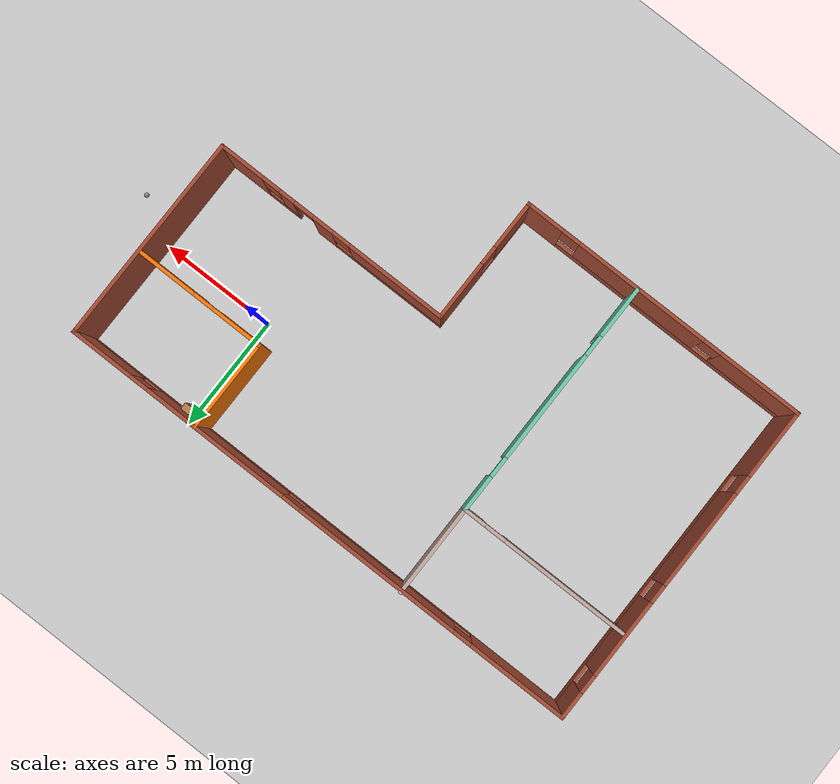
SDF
<sdf version="1.6">
 <world name="default">
  <model name="ground_plane">
   <static>1</static>
   <link name="link">
    <collision name="collision">
     <geometry><plane><normal>0 0 1</normal><size>100 100</size></plane></geometry>
     <surface>
      <contact><collide_bitmask>65535</collide_bitmask></contact>
      <friction><ode><mu>100</mu><mu2>50</mu2></ode></friction>
     </surface>
    </collision>
    <visual name="visual">
     <cast_shadows>0</cast_shadows>
     <geometry><plane><normal>0 0 1</normal><size>100 100</size></plane></geometry>
     <material>
      <script><uri>file://media/materials/scripts/gazebo.material</uri><name>Gazebo/Grey</name></script>
     </material>
    </visual>
   </link>
  </model>
  <model name="building_1">
   <pose>-6.503 -2.38802 0 0 -0 0</pose>
   <link name="Wall_1">
    <pose>1e-06 7.07117 0 0 -0 1.3e-05</pose>
    <visual name="Wall_1_Visual_0">
     <pose>-9.40288 0 1.25 0 -0 0</pose>
     <geometry><box><size>4.33824 0.15 2.5</size></box></geometry>
     <material>
      <script><uri>file://media/materials/scripts/gazebo.material</uri><name>Gazebo/Bricks</name></script>
      <ambient>1 1 1 1</ambient>
     </material>
     <meta><layer>0</layer></meta>
    </visual>
    <collision name="Wall_1_Collision_0">
     <geometry><box><size>4.33824 0.15 2.5</size></box></geometry>
     <pose>-9.40288 0 1.25 0 -0 0</pose>
    </collision>
    <visual name="Wall_1_Visual_1">
     <pose>2.16912 0 0.25 0 -0 0</pose>
     <geometry><box><size>18.8058 0.15 0.5</size></box></geometry>
     <material>
      <script><uri>file://media/materials/scripts/gazebo.material</uri><name>Gazebo/Bricks</name></script>
      <ambient>1 1 1 1</ambient>
     </material>
     <meta><layer>0</layer></meta>
    </visual>
    <collision name="Wall_1_Collision_1">
     <geometry><box><size>18.8058 0.15 0.5</size></box></geometry>
     <pose>2.16912 0 0.25 0 -0 0</pose>
    </collision>
    <visual name="Wall_1_Visual_2">
     <pose>-2.80368 0 1.5 0 -0 0</pose>
     <geometry><box><size>7.26015 0.15 2</size></box></geometry>
     <material>
      <script><uri>file://media/materials/scripts/gazebo.material</uri><name>Gazebo/Bricks</name></script>
      <ambient>1 1 1 1</ambient>
     </material>
     <meta><layer>0</layer></meta>
    </visual>
    <collision name="Wall_1_Collision_2">
     <geometry><box><size>7.26015 0.15 2</size></box></geometry>
     <pose>-2.80368 0 1.5 0 -0 0</pose>
    </collision>
    <visual name="Wall_1_Visual_3">
     <pose>4.82578 0 1.5 0 -0 0</pose>
     <geometry><box><size>6.39876 0.15 2</size></box></geometry>
     <material>
      <script><uri>file://media/materials/scripts/gazebo.material</uri><name>Gazebo/Bricks</name></script>
      <ambient>1 1 1 1</ambient>
     </material>
     <meta><layer>0</layer></meta>
    </visual>
    <collision name="Wall_1_Collision_3">
     <geometry><box><size>6.39876 0.15 2</size></box></geometry>
     <pose>4.82578 0 1.5 0 -0 0</pose>
    </collision>
    <visual name="Wall_1_Visual_4">
     <pose>10.1986 0 1.5 0 -0 0</pose>
     <geometry><box><size>2.74684 0.15 2</size></box></geometry>
     <material>
      <script><uri>file://media/materials/scripts/gazebo.material</uri><name>Gazebo/Bricks</name></script>
      <ambient>1 1 1 1</ambient>
     </material>
     <meta><layer>0</layer></meta>
    </visual>
    <collision name="Wall_1_Collision_4">
     <geometry><box><size>2.74684 0.15 2</size></box></geometry>
     <pose>10.1986 0 1.5 0 -0 0</pose>
    </collision>
    <visual name="Wall_1_Visual_5">
     <pose>-6.83376 0 1.9 0 -0 0</pose>
     <geometry><box><size>0.8 0.15 1.2</size></box></geometry>
     <material>
      <script><uri>file://media/materials/scripts/gazebo.material</uri><name>Gazebo/Bricks</name></script>
      <ambient>1 1 1 1</ambient>
     </material>
     <meta><layer>0</layer></meta>
    </visual>
    <collision name="Wall_1_Collision_5">
     <geometry><box><size>0.8 0.15 1.2</size></box></geometry>
     <pose>-6.83376 0 1.9 0 -0 0</pose>
    </collision>
    <visual name="Wall_1_Visual_6">
     <pose>1.22639 0 1.9 0 -0 0</pose>
     <geometry><box><size>0.8 0.15 1.2</size></box></geometry>
     <material>
      <script><uri>file://media/materials/scripts/gazebo.material</uri><name>Gazebo/Bricks</name></script>
      <ambient>1 1 1 1</ambient>
     </material>
     <meta><layer>0</layer></meta>
    </visual>
    <collision name="Wall_1_Collision_6">
     <geometry><box><size>0.8 0.15 1.2</size></box></geometry>
     <pose>1.22639 0 1.9 0 -0 0</pose>
    </collision>
    <visual name="Wall_1_Visual_7">
     <pose>8.42516 0 1.9 0 -0 0</pose>
     <geometry><box><size>0.8 0.15 1.2</size></box></geometry>
     <material>
      <script><uri>file://media/materials/scripts/gazebo.material</uri><name>Gazebo/Bricks</name></script>
      <ambient>1 1 1 1</ambient>
     </material>
     <meta><layer>0</layer></meta>
    </visual>
    <collision name="Wall_1_Collision_7">
     <geometry><box><size>0.8 0.15 1.2</size></box></geometry>
     <pose>8.42516 0 1.9 0 -0 0</pose>
    </collision>
   </link>
   <link name="Wall_11">
    <pose>-4.00347 -1.89602 0 0 0 -1.5708</pose>
    <visual name="Wall_11_Visual_0">
     <pose>-4.43993 0 1.25 0 -0 0</pose>
     <geometry><box><size>1.62015 0.15 2.5</size></box></geometry>
     <material>
      <script><uri>file://media/materials/scripts/gazebo.material</uri><name>Gazebo/Grey</name></script>
      <ambient>0.435294 0.796078 0.67451 1</ambient>
     </material>
     <meta><layer>0</layer></meta>
    </visual>
    <collision name="Wall_11_Collision_0">
     <geometry><box><size>1.62015 0.15 2.5</size></box></geometry>
     <pose>-4.43993 0 1.25 0 -0 0</pose>
    </collision>
    <visual name="Wall_11_Visual_1">
     <pose>-0.318806 0 1.25 0 -0 0</pose>
     <geometry><box><size>4.82209 0.15 2.5</size></box></geometry>
     <material>
      <script><uri>file://media/materials/scripts/gazebo.material</uri><name>Gazebo/Grey</name></script>
      <ambient>0.435294 0.796078 0.67451 1</ambient>
     </material>
     <meta><layer>0</layer></meta>
    </visual>
    <collision name="Wall_11_Collision_1">
     <geometry><box><size>4.82209 0.15 2.5</size></box></geometry>
     <pose>-0.318806 0 1.25 0 -0 0</pose>
    </collision>
    <visual name="Wall_11_Visual_2">
     <pose>4.12112 0 1.25 0 -0 0</pose>
     <geometry><box><size>2.25776 0.15 2.5</size></box></geometry>
     <material>
      <script><uri>file://media/materials/scripts/gazebo.material</uri><name>Gazebo/Grey</name></script>
      <ambient>0.435294 0.796078 0.67451 1</ambient>
     </material>
     <meta><layer>0</layer></meta>
    </visual>
    <collision name="Wall_11_Collision_2">
     <geometry><box><size>2.25776 0.15 2.5</size></box></geometry>
     <pose>4.12112 0 1.25 0 -0 0</pose>
    </collision>
    <visual name="Wall_11_Visual_3">
     <pose>-3.17985 0 2.25 0 -0 0</pose>
     <geometry><box><size>0.9 0.15 0.5</size></box></geometry>
     <material>
      <script><uri>file://media/materials/scripts/gazebo.material</uri><name>Gazebo/Grey</name></script>
      <ambient>0.435294 0.796078 0.67451 1</ambient>
     </material>
     <meta><layer>0</layer></meta>
    </visual>
    <collision name="Wall_11_Collision_3">
     <geometry><box><size>0.9 0.15 0.5</size></box></geometry>
     <pose>-3.17985 0 2.25 0 -0 0</pose>
    </collision>
    <visual name="Wall_11_Visual_4">
     <pose>2.54224 0 2.25 0 -0 0</pose>
     <geometry><box><size>0.9 0.15 0.5</size></box></geometry>
     <material>
      <script><uri>file://media/materials/scripts/gazebo.material</uri><name>Gazebo/Grey</name></script>
      <ambient>0.435294 0.796078 0.67451 1</ambient>
     </material>
     <meta><layer>0</layer></meta>
    </visual>
    <collision name="Wall_11_Collision_4">
     <geometry><box><size>0.9 0.15 0.5</size></box></geometry>
     <pose>2.54224 0 2.25 0 -0 0</pose>
    </collision>
   </link>
   <link name="Wall_13">
    <collision name="Wall_13_Collision">
     <geometry><box><size>4 0.15 2.5</size></box></geometry>
     <pose>0 0 1.25 0 -0 0</pose>
    </collision>
    <visual name="Wall_13_Visual">
     <pose>0 0 1.25 0 -0 0</pose>
     <geometry><box><size>4 0.15 2.5</size></box></geometry>
     <material>
      <script><uri>file://media/materials/scripts/gazebo.material</uri><name>Gazebo/Grey</name></script>
      <ambient>0.996078 0.47451 0.0196078 1</ambient>
     </material>
     <meta><layer>0</layer></meta>
    </visual>
    <pose>5.77946 5.14245 0 0 0 -1.5708</pose>
   </link>
   <link name="Wall_14">
    <pose>8.57946 3.21745 0 0 -0 0</pose>
    <visual name="Wall_14_Visual_0">
     <pose>-1.73965 0 1.25 0 -0 0</pose>
     <geometry><box><size>2.2707 0.15 2.5</size></box></geometry>
     <material>
      <script><uri>file://media/materials/scripts/gazebo.material</uri><name>Gazebo/Grey</name></script>
      <ambient>0.996078 0.47451 0.0196078 1</ambient>
     </material>
     <meta><layer>0</layer></meta>
    </visual>
    <collision name="Wall_14_Collision_0">
     <geometry><box><size>2.2707 0.15 2.5</size></box></geometry>
     <pose>-1.73965 0 1.25 0 -0 0</pose>
    </collision>
    <visual name="Wall_14_Visual_1">
     <pose>1.58535 0 1.25 0 -0 0</pose>
     <geometry><box><size>2.5793 0.15 2.5</size></box></geometry>
     <material>
      <script><uri>file://media/materials/scripts/gazebo.material</uri><name>Gazebo/Grey</name></script>
      <ambient>0.996078 0.47451 0.0196078 1</ambient>
     </material>
     <meta><layer>0</layer></meta>
    </visual>
    <collision name="Wall_14_Collision_1">
     <geometry><box><size>2.5793 0.15 2.5</size></box></geometry>
     <pose>1.58535 0 1.25 0 -0 0</pose>
    </collision>
    <visual name="Wall_14_Visual_2">
     <pose>-0.154301 0 2.25 0 -0 0</pose>
     <geometry><box><size>0.9 0.15 0.5</size></box></geometry>
     <material>
      <script><uri>file://media/materials/scripts/gazebo.material</uri><name>Gazebo/Grey</name></script>
      <ambient>0.996078 0.47451 0.0196078 1</ambient>
     </material>
     <meta><layer>0</layer></meta>
    </visual>
    <collision name="Wall_14_Collision_2">
     <geometry><box><size>0.9 0.15 0.5</size></box></geometry>
     <pose>-0.154301 0 2.25 0 -0 0</pose>
    </collision>
   </link>
   <link name="Wall_2">
    <collision name="Wall_2_Collision">
     <geometry><box><size>9 0.15 2.5</size></box></geometry>
     <pose>0 0 1.25 0 -0 0</pose>
    </collision>
    <visual name="Wall_2_Visual">
     <pose>0 0 1.25 0 -0 0</pose>
     <geometry><box><size>9 0.15 2.5</size></box></geometry>
     <material>
      <script><uri>file://media/materials/scripts/gazebo.material</uri><name>Gazebo/Bricks</name></script>
      <ambient>1 1 1 1</ambient>
     </material>
     <meta><layer>0</layer></meta>
    </visual>
    <pose>11.497 2.64632 0 0 0 -1.5708</pose>
   </link>
   <link name="Wall_3">
    <pose>6.322 -1.77868 0 0 -0 3.14159</pose>
    <visual name="Wall_3_Visual_0">
     <pose>-4.24575 0 1.25 0 -0 0</pose>
     <geometry><box><size>2.00851 0.15 2.5</size></box></geometry>
     <material>
      <script><uri>file://media/materials/scripts/gazebo.material</uri><name>Gazebo/Bricks</name></script>
      <ambient>1 1 1 1</ambient>
     </material>
     <meta><layer>0</layer></meta>
    </visual>
    <collision name="Wall_3_Collision_0">
     <geometry><box><size>2.00851 0.15 2.5</size></box></geometry>
     <pose>-4.24575 0 1.25 0 -0 0</pose>
    </collision>
    <visual name="Wall_3_Visual_1">
     <pose>-0.386142 0 1.25 0 -0 0</pose>
     <geometry><box><size>0.934308 0.15 2.5</size></box></geometry>
     <material>
      <script><uri>file://media/materials/scripts/gazebo.material</uri><name>Gazebo/Bricks</name></script>
      <ambient>1 1 1 1</ambient>
     </material>
     <meta><layer>0</layer></meta>
    </visual>
    <collision name="Wall_3_Collision_1">
     <geometry><box><size>0.934308 0.15 2.5</size></box></geometry>
     <pose>-0.386142 0 1.25 0 -0 0</pose>
    </collision>
    <visual name="Wall_3_Visual_2">
     <pose>-2.49739 0 0.25 0 -0 0</pose>
     <geometry><box><size>1.4882 0.15 0.5</size></box></geometry>
     <material>
      <script><uri>file://media/materials/scripts/gazebo.material</uri><name>Gazebo/Bricks</name></script>
      <ambient>1 1 1 1</ambient>
     </material>
     <meta><layer>0</layer></meta>
    </visual>
    <collision name="Wall_3_Collision_2">
     <geometry><box><size>1.4882 0.15 0.5</size></box></geometry>
     <pose>-2.49739 0 0.25 0 -0 0</pose>
    </collision>
    <visual name="Wall_3_Visual_3">
     <pose>2.66551 0 0.25 0 -0 0</pose>
     <geometry><box><size>5.16899 0.15 0.5</size></box></geometry>
     <material>
      <script><uri>file://media/materials/scripts/gazebo.material</uri><name>Gazebo/Bricks</name></script>
      <ambient>1 1 1 1</ambient>
     </material>
     <meta><layer>0</layer></meta>
    </visual>
    <collision name="Wall_3_Collision_3">
     <geometry><box><size>5.16899 0.15 0.5</size></box></geometry>
     <pose>2.66551 0 0.25 0 -0 0</pose>
    </collision>
    <visual name="Wall_3_Visual_4">
     <pose>-2.09739 0 1.5 0 -0 0</pose>
     <geometry><box><size>0.688197 0.15 2</size></box></geometry>
     <material>
      <script><uri>file://media/materials/scripts/gazebo.material</uri><name>Gazebo/Bricks</name></script>
      <ambient>1 1 1 1</ambient>
     </material>
     <meta><layer>0</layer></meta>
    </visual>
    <collision name="Wall_3_Collision_4">
     <geometry><box><size>0.688197 0.15 2</size></box></geometry>
     <pose>-2.09739 0 1.5 0 -0 0</pose>
    </collision>
    <visual name="Wall_3_Visual_5">
     <pose>-2.09739 0 1.5 0 -0 0</pose>
     <geometry><box><size>0.688197 0.15 2</size></box></geometry>
     <material>
      <script><uri>file://media/materials/scripts/gazebo.material</uri><name>Gazebo/Bricks</name></script>
      <ambient>1 1 1 1</ambient>
     </material>
     <meta><layer>0</layer></meta>
    </visual>
    <collision name="Wall_3_Collision_5">
     <geometry><box><size>0.688197 0.15 2</size></box></geometry>
     <pose>-2.09739 0 1.5 0 -0 0</pose>
    </collision>
    <visual name="Wall_3_Visual_6">
     <pose>3.06551 0 1.5 0 -0 0</pose>
     <geometry><box><size>4.36899 0.15 2</size></box></geometry>
     <material>
      <script><uri>file://media/materials/scripts/gazebo.material</uri><name>Gazebo/Bricks</name></script>
      <ambient>1 1 1 1</ambient>
     </material>
     <meta><layer>0</layer></meta>
    </visual>
    <collision name="Wall_3_Collision_6">
     <geometry><box><size>4.36899 0.15 2</size></box></geometry>
     <pose>3.06551 0 1.5 0 -0 0</pose>
    </collision>
    <visual name="Wall_3_Visual_7">
     <pose>-2.84149 0 1.9 0 -0 0</pose>
     <geometry><box><size>0.8 0.15 1.2</size></box></geometry>
     <material>
      <script><uri>file://media/materials/scripts/gazebo.material</uri><name>Gazebo/Bricks</name></script>
      <ambient>1 1 1 1</ambient>
     </material>
     <meta><layer>0</layer></meta>
    </visual>
    <collision name="Wall_3_Collision_7">
     <geometry><box><size>0.8 0.15 1.2</size></box></geometry>
     <pose>-2.84149 0 1.9 0 -0 0</pose>
    </collision>
    <visual name="Wall_3_Visual_8">
     <pose>0.481013 0 1.9 0 -0 0</pose>
     <geometry><box><size>0.8 0.15 1.2</size></box></geometry>
     <material>
      <script><uri>file://media/materials/scripts/gazebo.material</uri><name>Gazebo/Bricks</name></script>
      <ambient>1 1 1 1</ambient>
     </material>
     <meta><layer>0</layer></meta>
    </visual>
    <collision name="Wall_3_Collision_8">
     <geometry><box><size>0.8 0.15 1.2</size></box></geometry>
     <pose>0.481013 0 1.9 0 -0 0</pose>
    </collision>
    <visual name="Wall_3_Visual_9">
     <pose>-1.3033 0 2.25 0 -0 0</pose>
     <geometry><box><size>0.9 0.15 0.5</size></box></geometry>
     <material>
      <script><uri>file://media/materials/scripts/gazebo.material</uri><name>Gazebo/Bricks</name></script>
      <ambient>1 1 1 1</ambient>
     </material>
     <meta><layer>0</layer></meta>
    </visual>
    <collision name="Wall_3_Collision_9">
     <geometry><box><size>0.9 0.15 0.5</size></box></geometry>
     <pose>-1.3033 0 2.25 0 -0 0</pose>
    </collision>
    <visual name="Wall_3_Visual_10">
     <pose>-1.3033 0 2.25 0 -0 0</pose>
     <geometry><box><size>0.9 0.15 0.5</size></box></geometry>
     <material>
      <script><uri>file://media/materials/scripts/gazebo.material</uri><name>Gazebo/Bricks</name></script>
      <ambient>1 1 1 1</ambient>
     </material>
     <meta><layer>0</layer></meta>
    </visual>
    <collision name="Wall_3_Collision_10">
     <geometry><box><size>0.9 0.15 0.5</size></box></geometry>
     <pose>-1.3033 0 2.25 0 -0 0</pose>
    </collision>
   </link>
   <link name="Wall_4">
    <pose>1.147 -4.45368 0 0 0 -1.5708</pose>
    <visual name="Wall_4_Visual_0">
     <pose>-1.45965 0 1.25 0 -0 0</pose>
     <geometry><box><size>2.5807 0.15 2.5</size></box></geometry>
     <material>
      <script><uri>file://media/materials/scripts/gazebo.material</uri><name>Gazebo/Bricks</name></script>
      <ambient>1 1 1 1</ambient>
     </material>
     <meta><layer>0</layer></meta>
    </visual>
    <collision name="Wall_4_Collision_0">
     <geometry><box><size>2.5807 0.15 2.5</size></box></geometry>
     <pose>-1.45965 0 1.25 0 -0 0</pose>
    </collision>
    <visual name="Wall_4_Visual_1">
     <pose>1.29035 0 0.25 0 -0 0</pose>
     <geometry><box><size>2.9193 0.15 0.5</size></box></geometry>
     <material>
      <script><uri>file://media/materials/scripts/gazebo.material</uri><name>Gazebo/Bricks</name></script>
      <ambient>1 1 1 1</ambient>
     </material>
     <meta><layer>0</layer></meta>
    </visual>
    <collision name="Wall_4_Collision_1">
     <geometry><box><size>2.9193 0.15 0.5</size></box></geometry>
     <pose>1.29035 0 0.25 0 -0 0</pose>
    </collision>
    <visual name="Wall_4_Visual_2">
     <pose>1.69035 0 1.5 0 -0 0</pose>
     <geometry><box><size>2.1193 0.15 2</size></box></geometry>
     <material>
      <script><uri>file://media/materials/scripts/gazebo.material</uri><name>Gazebo/Bricks</name></script>
      <ambient>1 1 1 1</ambient>
     </material>
     <meta><layer>0</layer></meta>
    </visual>
    <collision name="Wall_4_Collision_2">
     <geometry><box><size>2.1193 0.15 2</size></box></geometry>
     <pose>1.69035 0 1.5 0 -0 0</pose>
    </collision>
    <visual name="Wall_4_Visual_3">
     <pose>0.230696 0 1.9 0 -0 0</pose>
     <geometry><box><size>0.8 0.15 1.2</size></box></geometry>
     <material>
      <script><uri>file://media/materials/scripts/gazebo.material</uri><name>Gazebo/Bricks</name></script>
      <ambient>1 1 1 1</ambient>
     </material>
     <meta><layer>0</layer></meta>
    </visual>
    <collision name="Wall_4_Collision_3">
     <geometry><box><size>0.8 0.15 1.2</size></box></geometry>
     <pose>0.230696 0 1.9 0 -0 0</pose>
    </collision>
   </link>
   <link name="Wall_5">
    <pose>-5.175 -7.12883 0 0 0 -3.14157</pose>
    <visual name="Wall_5_Visual_0">
     <pose>-5.55322 0 1.25 0 -0 0</pose>
     <geometry><box><size>1.68755 0.15 2.5</size></box></geometry>
     <material>
      <script><uri>file://media/materials/scripts/gazebo.material</uri><name>Gazebo/Bricks</name></script>
      <ambient>0.435294 0.796078 0.67451 1</ambient>
     </material>
     <meta><layer>0</layer></meta>
    </visual>
    <collision name="Wall_5_Collision_0">
     <geometry><box><size>1.68755 0.15 2.5</size></box></geometry>
     <pose>-5.55322 0 1.25 0 -0 0</pose>
    </collision>
    <visual name="Wall_5_Visual_1">
     <pose>0.843774 0 0.25 0 -0 0</pose>
     <geometry><box><size>11.1064 0.15 0.5</size></box></geometry>
     <material>
      <script><uri>file://media/materials/scripts/gazebo.material</uri><name>Gazebo/Bricks</name></script>
      <ambient>0.435294 0.796078 0.67451 1</ambient>
     </material>
     <meta><layer>0</layer></meta>
    </visual>
    <collision name="Wall_5_Collision_1">
     <geometry><box><size>11.1064 0.15 0.5</size></box></geometry>
     <pose>0.843774 0 0.25 0 -0 0</pose>
    </collision>
    <visual name="Wall_5_Visual_2">
     <pose>-0.986942 0 1.5 0 -0 0</pose>
     <geometry><box><size>5.84502 0.15 2</size></box></geometry>
     <material>
      <script><uri>file://media/materials/scripts/gazebo.material</uri><name>Gazebo/Bricks</name></script>
      <ambient>0.435294 0.796078 0.67451 1</ambient>
     </material>
     <meta><layer>0</layer></meta>
    </visual>
    <collision name="Wall_5_Collision_2">
     <geometry><box><size>5.84502 0.15 2</size></box></geometry>
     <pose>-0.986942 0 1.5 0 -0 0</pose>
    </collision>
    <visual name="Wall_5_Visual_3">
     <pose>4.56628 0 1.5 0 -0 0</pose>
     <geometry><box><size>3.66143 0.15 2</size></box></geometry>
     <material>
      <script><uri>file://media/materials/scripts/gazebo.material</uri><name>Gazebo/Bricks</name></script>
      <ambient>0.435294 0.796078 0.67451 1</ambient>
     </material>
     <meta><layer>0</layer></meta>
    </visual>
    <collision name="Wall_5_Collision_3">
     <geometry><box><size>3.66143 0.15 2</size></box></geometry>
     <pose>4.56628 0 1.5 0 -0 0</pose>
    </collision>
    <visual name="Wall_5_Visual_4">
     <pose>-4.30945 0 1.9 0 -0 0</pose>
     <geometry><box><size>0.8 0.15 1.2</size></box></geometry>
     <material>
      <script><uri>file://media/materials/scripts/gazebo.material</uri><name>Gazebo/Bricks</name></script>
      <ambient>0.435294 0.796078 0.67451 1</ambient>
     </material>
     <meta><layer>0</layer></meta>
    </visual>
    <collision name="Wall_5_Collision_4">
     <geometry><box><size>0.8 0.15 1.2</size></box></geometry>
     <pose>-4.30945 0 1.9 0 -0 0</pose>
    </collision>
    <visual name="Wall_5_Visual_5">
     <pose>2.33557 0 1.9 0 -0 0</pose>
     <geometry><box><size>0.8 0.15 1.2</size></box></geometry>
     <material>
      <script><uri>file://media/materials/scripts/gazebo.material</uri><name>Gazebo/Bricks</name></script>
      <ambient>0.435294 0.796078 0.67451 1</ambient>
     </material>
     <meta><layer>0</layer></meta>
    </visual>
    <collision name="Wall_5_Collision_5">
     <geometry><box><size>0.8 0.15 1.2</size></box></geometry>
     <pose>2.33557 0 1.9 0 -0 0</pose>
    </collision>
   </link>
   <link name="Wall_6">
    <pose>-11.497 -0.028977 0 0 -0 1.5708</pose>
    <visual name="Wall_6_Visual_0">
     <pose>-5.65374 0 1.25 0 -0 0</pose>
     <geometry><box><size>3.04252 0.15 2.5</size></box></geometry>
     <material>
      <script><uri>file://media/materials/scripts/gazebo.material</uri><name>Gazebo/Bricks</name></script>
      <ambient>0.435294 0.796078 0.67451 1</ambient>
     </material>
     <meta><layer>0</layer></meta>
    </visual>
    <collision name="Wall_6_Collision_0">
     <geometry><box><size>3.04252 0.15 2.5</size></box></geometry>
     <pose>-5.65374 0 1.25 0 -0 0</pose>
    </collision>
    <visual name="Wall_6_Visual_1">
     <pose>1.52126 0 0.25 0 -0 0</pose>
     <geometry><box><size>11.3075 0.15 0.5</size></box></geometry>
     <material>
      <script><uri>file://media/materials/scripts/gazebo.material</uri><name>Gazebo/Bricks</name></script>
      <ambient>0.435294 0.796078 0.67451 1</ambient>
     </material>
     <meta><layer>0</layer></meta>
    </visual>
    <collision name="Wall_6_Collision_1">
     <geometry><box><size>11.3075 0.15 0.5</size></box></geometry>
     <pose>1.52126 0 0.25 0 -0 0</pose>
    </collision>
    <visual name="Wall_6_Visual_2">
     <pose>-1.17907 0 1.5 0 -0 0</pose>
     <geometry><box><size>4.30681 0.15 2</size></box></geometry>
     <material>
      <script><uri>file://media/materials/scripts/gazebo.material</uri><name>Gazebo/Bricks</name></script>
      <ambient>0.435294 0.796078 0.67451 1</ambient>
     </material>
     <meta><layer>0</layer></meta>
    </visual>
    <collision name="Wall_6_Collision_2">
     <geometry><box><size>4.30681 0.15 2</size></box></geometry>
     <pose>-1.17907 0 1.5 0 -0 0</pose>
    </collision>
    <visual name="Wall_6_Visual_3">
     <pose>3.46628 0 1.5 0 -0 0</pose>
     <geometry><box><size>3.3839 0.15 2</size></box></geometry>
     <material>
      <script><uri>file://media/materials/scripts/gazebo.material</uri><name>Gazebo/Bricks</name></script>
      <ambient>0.435294 0.796078 0.67451 1</ambient>
     </material>
     <meta><layer>0</layer></meta>
    </visual>
    <collision name="Wall_6_Collision_3">
     <geometry><box><size>3.3839 0.15 2</size></box></geometry>
     <pose>3.46628 0 1.5 0 -0 0</pose>
    </collision>
    <visual name="Wall_6_Visual_4">
     <pose>6.56661 0 1.5 0 -0 0</pose>
     <geometry><box><size>1.21677 0.15 2</size></box></geometry>
     <material>
      <script><uri>file://media/materials/scripts/gazebo.material</uri><name>Gazebo/Bricks</name></script>
      <ambient>0.435294 0.796078 0.67451 1</ambient>
     </material>
     <meta><layer>0</layer></meta>
    </visual>
    <collision name="Wall_6_Collision_4">
     <geometry><box><size>1.21677 0.15 2</size></box></geometry>
     <pose>6.56661 0 1.5 0 -0 0</pose>
    </collision>
    <visual name="Wall_6_Visual_5">
     <pose>-3.73248 0 1.9 0 -0 0</pose>
     <geometry><box><size>0.8 0.15 1.2</size></box></geometry>
     <material>
      <script><uri>file://media/materials/scripts/gazebo.material</uri><name>Gazebo/Bricks</name></script>
      <ambient>0.435294 0.796078 0.67451 1</ambient>
     </material>
     <meta><layer>0</layer></meta>
    </visual>
    <collision name="Wall_6_Collision_5">
     <geometry><box><size>0.8 0.15 1.2</size></box></geometry>
     <pose>-3.73248 0 1.9 0 -0 0</pose>
    </collision>
    <visual name="Wall_6_Visual_6">
     <pose>1.37434 0 1.9 0 -0 0</pose>
     <geometry><box><size>0.8 0.15 1.2</size></box></geometry>
     <material>
      <script><uri>file://media/materials/scripts/gazebo.material</uri><name>Gazebo/Bricks</name></script>
      <ambient>0.435294 0.796078 0.67451 1</ambient>
     </material>
     <meta><layer>0</layer></meta>
    </visual>
    <collision name="Wall_6_Collision_6">
     <geometry><box><size>0.8 0.15 1.2</size></box></geometry>
     <pose>1.37434 0 1.9 0 -0 0</pose>
    </collision>
    <visual name="Wall_6_Visual_7">
     <pose>5.55823 0 1.9 0 -0 0</pose>
     <geometry><box><size>0.8 0.15 1.2</size></box></geometry>
     <material>
      <script><uri>file://media/materials/scripts/gazebo.material</uri><name>Gazebo/Bricks</name></script>
      <ambient>0.435294 0.796078 0.67451 1</ambient>
     </material>
     <meta><layer>0</layer></meta>
    </visual>
    <collision name="Wall_6_Collision_7">
     <geometry><box><size>0.8 0.15 1.2</size></box></geometry>
     <pose>5.55823 0 1.9 0 -0 0</pose>
    </collision>
   </link>
   <link name="Wall_8">
    <collision name="Wall_8_Collision">
     <geometry><box><size>4 0.15 2.5</size></box></geometry>
     <pose>0 0 1.25 0 -0 0</pose>
    </collision>
    <visual name="Wall_8_Visual">
     <pose>0 0 1.25 0 -0 0</pose>
     <geometry><box><size>4 0.15 2.5</size></box></geometry>
     <material>
      <script><uri>file://media/materials/scripts/gazebo.material</uri><name>Gazebo/Grey</name></script>
      <ambient>0.760784 0.662745 0.627451 1</ambient>
     </material>
     <meta><layer>0</layer></meta>
    </visual>
    <pose>-4.00347 5.20398 0 0 0 -1.5708</pose>
   </link>
   <link name="Wall_9">
    <pose>-7.67847 3.27898 0 0 -0 3.14159</pose>
    <visual name="Wall_9_Visual_0">
     <pose>-3.22993 0 1.25 0 -0 0</pose>
     <geometry><box><size>1.04014 0.15 2.5</size></box></geometry>
     <material>
      <script><uri>file://media/materials/scripts/gazebo.material</uri><name>Gazebo/Grey</name></script>
      <ambient>0.760784 0.662745 0.627451 1</ambient>
     </material>
     <meta><layer>0</layer></meta>
    </visual>
    <collision name="Wall_9_Collision_0">
     <geometry><box><size>1.04014 0.15 2.5</size></box></geometry>
     <pose>-3.22993 0 1.25 0 -0 0</pose>
    </collision>
    <visual name="Wall_9_Visual_1">
     <pose>0.97007 0 1.25 0 -0 0</pose>
     <geometry><box><size>5.55986 0.15 2.5</size></box></geometry>
     <material>
      <script><uri>file://media/materials/scripts/gazebo.material</uri><name>Gazebo/Grey</name></script>
      <ambient>0.760784 0.662745 0.627451 1</ambient>
     </material>
     <meta><layer>0</layer></meta>
    </visual>
    <collision name="Wall_9_Collision_1">
     <geometry><box><size>5.55986 0.15 2.5</size></box></geometry>
     <pose>0.97007 0 1.25 0 -0 0</pose>
    </collision>
    <visual name="Wall_9_Visual_2">
     <pose>-2.25986 0 2.25 0 -0 0</pose>
     <geometry><box><size>0.9 0.15 0.5</size></box></geometry>
     <material>
      <script><uri>file://media/materials/scripts/gazebo.material</uri><name>Gazebo/Grey</name></script>
      <ambient>0.760784 0.662745 0.627451 1</ambient>
     </material>
     <meta><layer>0</layer></meta>
    </visual>
    <collision name="Wall_9_Collision_2">
     <geometry><box><size>0.9 0.15 0.5</size></box></geometry>
     <pose>-2.25986 0 2.25 0 -0 0</pose>
    </collision>
   </link>
   <static>1</static>
  </model>
  <model name="bookshelf">
   <static>1</static>
   <link name="link">
    <inertial><mass>1</mass></inertial>
    <collision name="back">
     <pose>0 0.005 0.6 0 -0 0</pose>
     <geometry><box><size>0.9 0.01 1.2</size></box></geometry>
    </collision>
    <visual name="visual1">
     <pose>0 0.005 0.6 0 -0 0</pose>
     <geometry><box><size>0.9 0.01 1.2</size></box></geometry>
     <material>
      <script><uri>file://media/materials/scripts/gazebo.material</uri><name>Gazebo/Wood</name></script>
     </material>
    </visual>
    <collision name="left_side">
     <pose>0.45 -0.195 0.6 0 -0 0</pose>
     <geometry><box><size>0.02 0.4 1.2</size></box></geometry>
    </collision>
    <visual name="visual2">
     <pose>0.45 -0.195 0.6 0 -0 0</pose>
     <geometry><box><size>0.02 0.4 1.2</size></box></geometry>
     <material>
      <script><uri>file://media/materials/scripts/gazebo.material</uri><name>Gazebo/Wood</name></script>
     </material>
    </visual>
    <collision name="right_side">
     <pose>-0.45 -0.195 0.6 0 -0 0</pose>
     <geometry><box><size>0.02 0.4 1.2</size></box></geometry>
    </collision>
    <visual name="visual3">
     <pose>-0.45 -0.195 0.6 0 -0 0</pose>
     <geometry><box><size>0.02 0.4 1.2</size></box></geometry>
     <material>
      <script><uri>file://media/materials/scripts/gazebo.material</uri><name>Gazebo/Wood</name></script>
     </material>
    </visual>
    <collision name="bottom">
     <pose>0 -0.195 0.03 0 -0 0</pose>
     <geometry><box><size>0.88 0.4 0.06</size></box></geometry>
    </collision>
    <visual name="visual4">
     <pose>0 -0.195 0.03 0 -0 0</pose>
     <geometry><box><size>0.88 0.4 0.06</size></box></geometry>
     <material>
      <script><uri>file://media/materials/scripts/gazebo.material</uri><name>Gazebo/Wood</name></script>
     </material>
    </visual>
    <collision name="top">
     <pose>0 -0.195 1.19 0 -0 0</pose>
     <geometry><box><size>0.88 0.4 0.02</size></box></geometry>
    </collision>
    <visual name="visual5">
     <pose>0 -0.195 1.19 0 -0 0</pose>
     <geometry><box><size>0.88 0.4 0.02</size></box></geometry>
     <material>
      <script><uri>file://media/materials/scripts/gazebo.material</uri><name>Gazebo/Wood</name></script>
     </material>
    </visual>
    <collision name="low_shelf">
     <pose>0 -0.195 0.43 0 -0 0</pose>
     <geometry><box><size>0.88 0.4 0.02</size></box></geometry>
    </collision>
    <visual name="visual6">
     <pose>0 -0.195 0.43 0 -0 0</pose>
     <geometry><box><size>0.88 0.4 0.02</size></box></geometry>
     <material>
      <script><uri>file://media/materials/scripts/gazebo.material</uri><name>Gazebo/Wood</name></script>
     </material>
    </visual>
    <collision name="high_shelf">
     <pose>0 -0.195 0.8 0 -0 0</pose>
     <geometry><box><size>0.88 0.4 0.02</size></box></geometry>
    </collision>
    <visual name="visual7">
     <pose>0 -0.195 0.8 0 -0 0</pose>
     <geometry><box><size>0.88 0.4 0.02</size></box></geometry>
     <material>
      <script><uri>file://media/materials/scripts/gazebo.material</uri><name>Gazebo/Wood</name></script>
     </material>
    </visual>
   </link>
   <pose>-0.071595 4.70895 0 0 -0 0</pose>
  </model>
  <model name="my_ball">
   <link name="link_0">
    <inertial>
     <mass>1</mass>
     <inertia><ixx>0.1</ixx><ixy>0</ixy><ixz>0</ixz><iyy>0.1</iyy><iyz>0</iyz><izz>0.1</izz></inertia>
    </inertial>
    <visual name="visual">
     <geometry><sphere><radius>0.1</radius></sphere></geometry>
     <material>
      <lighting>1</lighting>
      <script><uri>file://media/materials/scripts/gazebo.material</uri><name>Gazebo/Grey</name></script>
      <shader type="pixel"><normal_map>__default__</normal_map></shader>
      <ambient>1 1 1 1</ambient>
      <diffuse>1 1 1 1</diffuse>
      <specular>1 1 1 1</specular>
      <emissive>1 1 1 1</emissive>
     </material>
    </visual>
    <collision name="collision">
     <geometry><sphere><radius>0.1</radius></sphere></geometry>
     <surface>
      <friction>
       <ode><mu>1</mu><mu2>1</mu2><fdir1>0 0 0</fdir1><slip1>0</slip1><slip2>0</slip2></ode>
       <torsional>
        <coefficient>1</coefficient>
        <patch_radius>0</patch_radius>
        <surface_radius>0</surface_radius>
        <use_patch_radius>1</use_patch_radius>
        <ode><slip>0</slip></ode>
       </torsional>
      </friction>
      <bounce><restitution_coefficient>0</restitution_coefficient><threshold>1e+06</threshold></bounce>
      <contact>
       <collide_without_contact>0</collide_without_contact>
       <collide_without_contact_bitmask>1</collide_without_contact_bitmask>
       <collide_bitmask>1</collide_bitmask>
       <ode>
        <soft_cfm>0</soft_cfm>
        <soft_erp>0.2</soft_erp>
        <kp>1e+13</kp>
        <kd>1</kd>
        <max_vel>0.01</max_vel>
        <min_depth>0</min_depth>
       </ode>
       <bullet>
        <split_impulse>1</split_impulse>
        <split_impulse_penetration_threshold>-0.01</split_impulse_penetration_threshold>
        <soft_cfm>0</soft_cfm>
        <soft_erp>0.2</soft_erp>
        <kp>1e+13</kp>
        <kd>1</kd>
       </bullet>
      </contact>
     </surface>
    </collision>
   </link>
   <static>0</static>
   <pose>6.95628 -1.0575 0.1 0 -0 0</pose>
  </model>
 </world>
</sdf>
